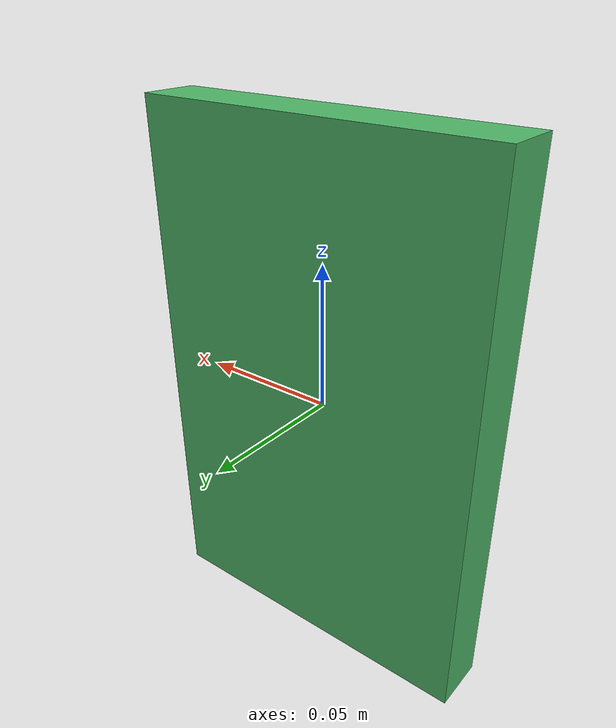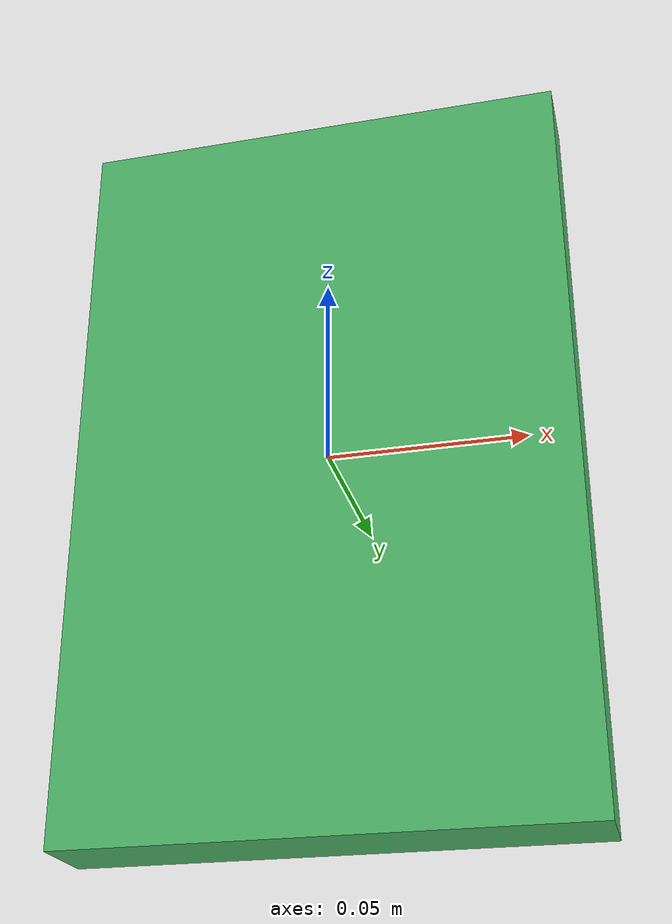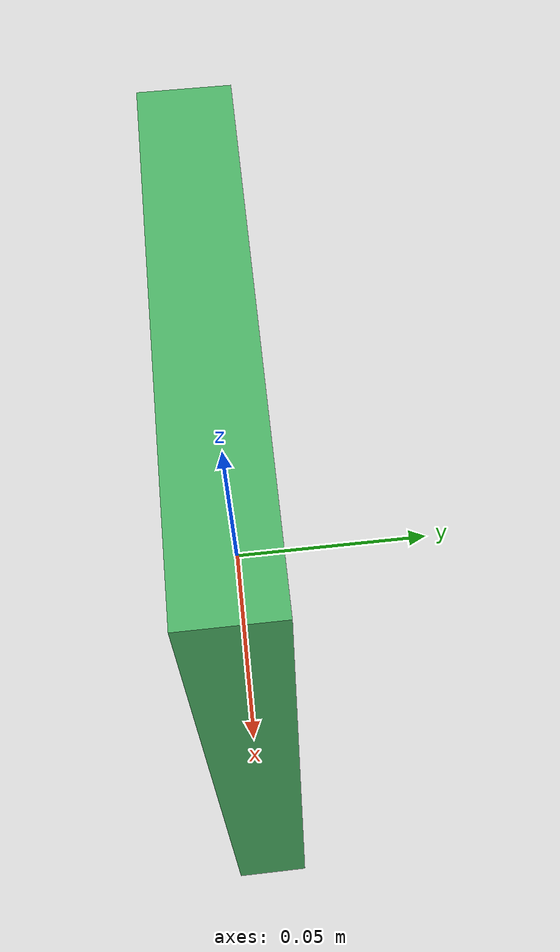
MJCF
<mujoco model="book_small">
  <compiler angle="radian"/>
  <!-- Full dimensions (m): 0.125 0.02 0.19; local X depth, Y thickness, Z height.
       Uniform-box inertia is explicit; geoms do not add mass. -->
  <worldbody>
    <body name="book">
      <freejoint name="book/free_joint"/>
      <inertial pos="0 0 0" quat="1 0 0 0" mass="0.25" diaginertia="0.000760416666666667 0.00107760416666667 0.000333854166666667"/>
      <geom name="book/collision" type="box" size="0.0625 0.01 0.095" mass="0"
            friction="0.9 0.005 0.0001" group="3" rgba="0 0 0 0"/>
      <geom name="book/visual" type="box" size="0.0625 0.01 0.095" mass="0"
            contype="0" conaffinity="0" group="1" rgba="0.3 0.7 0.4 1"/>
      <site name="book/center" size="0.005 0 0" group="5"/>
      <site name="book/grasp_target" pos="-0.0505 0 0"
            quat="0.5 0.5 0.5 0.5" size="0.005 0 0" rgba="1 0.5 0 1" group="1"/>
    </body>
  </worldbody>
</mujoco>
